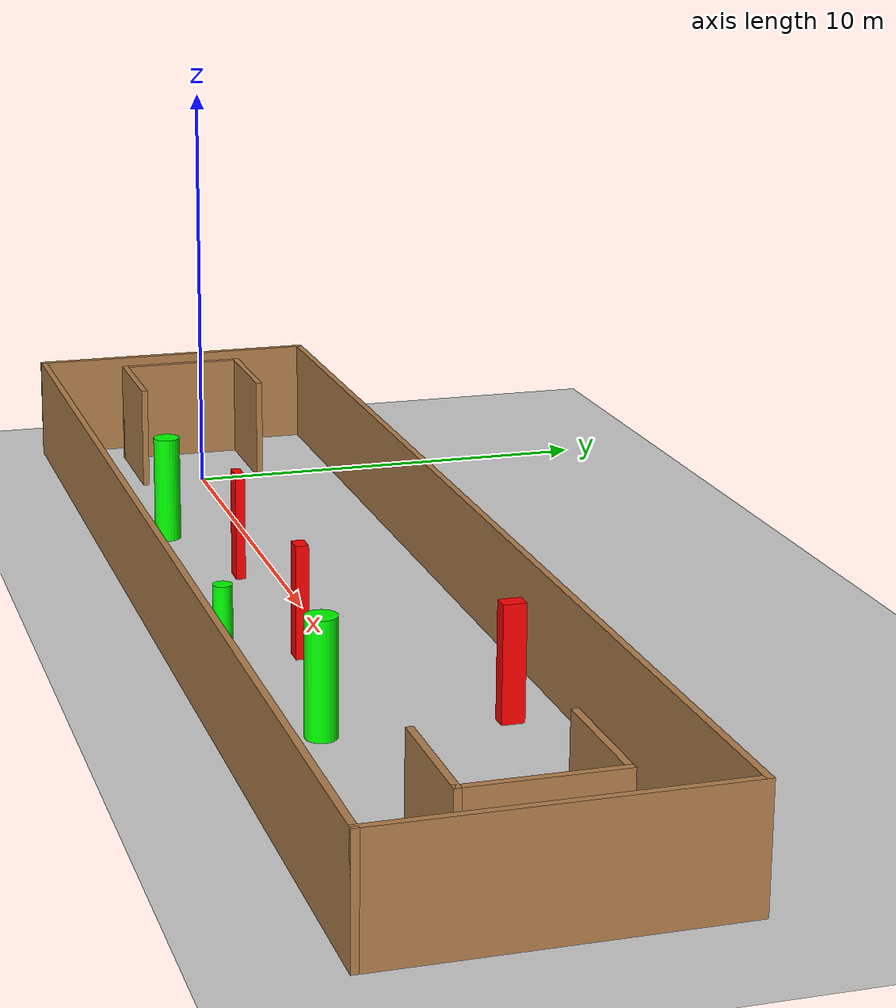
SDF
<sdf version="1.7">
 <world name="default">
  <light name="sun" type="directional">
   <pose>0 0 10 0 -0 0</pose>
   <diffuse>0.8 0.8 0.8 1</diffuse>
   <specular>0.2 0.2 0.2 1</specular>
   <attenuation>
    <range>1000</range>
    <constant>0.9</constant>
    <linear>0.01</linear>
    <quadratic>0.001</quadratic>
   </attenuation>
   <direction>-0.5 0.1 -0.9</direction>
   <spot><inner_angle>0</inner_angle><outer_angle>0</outer_angle><falloff>0</falloff></spot>
  </light>
  <model name="ground_plane">
   <static>1</static>
   <link name="link">
    <collision name="collision">
     <geometry><plane><normal>0 0 1</normal><size>100 100</size></plane></geometry>
     <surface>
      <contact><collide_bitmask>65535</collide_bitmask></contact>
      <friction><ode><mu>100</mu><mu2>50</mu2></ode></friction>
     </surface>
    </collision>
    <visual name="visual">
     <cast_shadows>0</cast_shadows>
     <geometry><plane><normal>0 0 1</normal><size>100 100</size></plane></geometry>
     <material>
      <script><uri>file://media/materials/scripts/gazebo.material</uri><name>Gazebo/Grey</name></script>
     </material>
    </visual>
   </link>
  </model>
  <gravity>0 0 -9.8</gravity>
  <magnetic_field>6e-06 2.3e-05 -4.2e-05</magnetic_field>
  <atmosphere type="adiabatic"/>
  <physics type="ode">
   <max_step_size>0.001</max_step_size>
   <real_time_factor>1</real_time_factor>
   <real_time_update_rate>1000</real_time_update_rate>
  </physics>
  <scene><ambient>0.4 0.4 0.4 1</ambient><background>0.7 0.7 0.7 1</background><shadows>1</shadows></scene>
  <spherical_coordinates>
   <surface_model>EARTH_WGS84</surface_model>
   <latitude_deg>0</latitude_deg>
   <longitude_deg>0</longitude_deg>
   <elevation>0</elevation>
   <heading_deg>0</heading_deg>
  </spherical_coordinates>
  <model name="my_base_walls">
   <link name="Wall_0">
    <collision name="Wall_0_Collision">
     <geometry><box><size>7.15 0.15 2.5</size></box></geometry>
     <pose>0 0 1.25 0 -0 0</pose>
    </collision>
    <visual name="Wall_0_Visual">
     <pose>0 0 1.25 0 -0 0</pose>
     <geometry><box><size>7.15 0.15 2.5</size></box></geometry>
     <material>
      <script><uri>file://media/materials/scripts/gazebo.material</uri><name>Gazebo/Wood</name></script>
      <ambient>1 1 1 1</ambient>
     </material>
     <meta><layer>0</layer></meta>
    </visual>
    <pose>-15 0 0 0 -0 1.5708</pose>
   </link>
   <link name="Wall_10">
    <collision name="Wall_10_Collision">
     <geometry><box><size>2.65 0.15 2.5</size></box></geometry>
     <pose>0 0 1.25 0 -0 0</pose>
    </collision>
    <visual name="Wall_10_Visual">
     <pose>0 0 1.25 0 -0 0</pose>
     <geometry><box><size>2.65 0.15 2.5</size></box></geometry>
     <material>
      <script><uri>file://media/materials/scripts/gazebo.material</uri><name>Gazebo/Wood</name></script>
      <ambient>1 1 1 1</ambient>
     </material>
     <meta><layer>0</layer></meta>
    </visual>
    <pose>-12.75 -1.5 0 0 -0 0</pose>
   </link>
   <link name="Wall_12">
    <collision name="Wall_12_Collision">
     <geometry><box><size>2.65 0.15 2.5</size></box></geometry>
     <pose>0 0 1.25 0 -0 0</pose>
    </collision>
    <visual name="Wall_12_Visual">
     <pose>0 0 1.25 0 -0 0</pose>
     <geometry><box><size>2.65 0.15 2.5</size></box></geometry>
     <material>
      <script><uri>file://media/materials/scripts/gazebo.material</uri><name>Gazebo/Wood</name></script>
      <ambient>1 1 1 1</ambient>
     </material>
     <meta><layer>0</layer></meta>
    </visual>
    <pose>-12.75 1.5 0 0 -0 0</pose>
   </link>
   <link name="Wall_14">
    <collision name="Wall_14_Collision">
     <geometry><box><size>3.15 0.15 2.5</size></box></geometry>
     <pose>0 0 1.25 0 -0 0</pose>
    </collision>
    <visual name="Wall_14_Visual">
     <pose>0 0 1.25 0 -0 0</pose>
     <geometry><box><size>3.15 0.15 2.5</size></box></geometry>
     <material>
      <script><uri>file://media/materials/scripts/gazebo.material</uri><name>Gazebo/Wood</name></script>
      <ambient>1 1 1 1</ambient>
     </material>
     <meta><layer>0</layer></meta>
    </visual>
    <pose>14 0 0 0 -0 -1.5708</pose>
   </link>
   <link name="Wall_15">
    <collision name="Wall_15_Collision">
     <geometry><box><size>2.65 0.15 2.5</size></box></geometry>
     <pose>0 0 1.25 0 -0 0</pose>
    </collision>
    <visual name="Wall_15_Visual">
     <pose>0 0 1.25 0 -0 0</pose>
     <geometry><box><size>2.65 0.15 2.5</size></box></geometry>
     <material>
      <script><uri>file://media/materials/scripts/gazebo.material</uri><name>Gazebo/Wood</name></script>
      <ambient>1 1 1 1</ambient>
     </material>
     <meta><layer>0</layer></meta>
    </visual>
    <pose>12.75 -1.5 0 0 -0 3.14159</pose>
   </link>
   <link name="Wall_17">
    <collision name="Wall_17_Collision">
     <geometry><box><size>2.65 0.15 2.5</size></box></geometry>
     <pose>0 0 1.25 0 -0 0</pose>
    </collision>
    <visual name="Wall_17_Visual">
     <pose>0 0 1.25 0 -0 0</pose>
     <geometry><box><size>2.65 0.15 2.5</size></box></geometry>
     <material>
      <script><uri>file://media/materials/scripts/gazebo.material</uri><name>Gazebo/Wood</name></script>
      <ambient>1 1 1 1</ambient>
     </material>
     <meta><layer>0</layer></meta>
    </visual>
    <pose>12.75 1.5 0 0 -0 3.14159</pose>
   </link>
   <link name="Wall_2">
    <collision name="Wall_2_Collision">
     <geometry><box><size>30.15 0.15 2.5</size></box></geometry>
     <pose>0 0 1.25 0 -0 0</pose>
    </collision>
    <visual name="Wall_2_Visual">
     <pose>0 0 1.25 0 -0 0</pose>
     <geometry><box><size>30.15 0.15 2.5</size></box></geometry>
     <material>
      <script><uri>file://media/materials/scripts/gazebo.material</uri><name>Gazebo/Wood</name></script>
      <ambient>1 1 1 1</ambient>
     </material>
     <meta><layer>0</layer></meta>
    </visual>
    <pose>-0 -3.5 0 0 -0 0</pose>
   </link>
   <link name="Wall_4">
    <collision name="Wall_4_Collision">
     <geometry><box><size>30.15 0.15 2.5</size></box></geometry>
     <pose>0 0 1.25 0 -0 0</pose>
    </collision>
    <visual name="Wall_4_Visual">
     <pose>0 0 1.25 0 -0 0</pose>
     <geometry><box><size>30.15 0.15 2.5</size></box></geometry>
     <material>
      <script><uri>file://media/materials/scripts/gazebo.material</uri><name>Gazebo/Wood</name></script>
      <ambient>1 1 1 1</ambient>
     </material>
     <meta><layer>0</layer></meta>
    </visual>
    <pose>-0 3.5 0 0 -0 0</pose>
   </link>
   <link name="Wall_6">
    <collision name="Wall_6_Collision">
     <geometry><box><size>7.15 0.15 2.5</size></box></geometry>
     <pose>0 0 1.25 0 -0 0</pose>
    </collision>
    <visual name="Wall_6_Visual">
     <pose>0 0 1.25 0 -0 0</pose>
     <geometry><box><size>7.15 0.15 2.5</size></box></geometry>
     <material>
      <script><uri>file://media/materials/scripts/gazebo.material</uri><name>Gazebo/Wood</name></script>
      <ambient>1 1 1 1</ambient>
     </material>
     <meta><layer>0</layer></meta>
    </visual>
    <pose>15 0 0 0 -0 -1.5708</pose>
   </link>
   <link name="Wall_9">
    <collision name="Wall_9_Collision">
     <geometry><box><size>3.15 0.15 2.5</size></box></geometry>
     <pose>0 0 1.25 0 -0 0</pose>
    </collision>
    <visual name="Wall_9_Visual">
     <pose>0 0 1.25 0 -0 0</pose>
     <geometry><box><size>3.15 0.15 2.5</size></box></geometry>
     <material>
      <script><uri>file://media/materials/scripts/gazebo.material</uri><name>Gazebo/Wood</name></script>
      <ambient>1 1 1 1</ambient>
     </material>
     <meta><layer>0</layer></meta>
    </visual>
    <pose>-14 0 0 0 -0 -1.5708</pose>
   </link>
   <static>1</static>
   <pose>11.5 0 0 0 -0 0</pose>
  </model>
  <model name="cylinder1">
   <static>1</static>
   <link name="link">
    <inertial>
     <mass>1</mass>
     <inertia><ixx>0.5</ixx><ixy>0</ixy><ixz>0</ixz><iyy>0.5</iyy><iyz>0</iyz><izz>1</izz></inertia>
    </inertial>
    <collision name="collision">
     <geometry><cylinder><radius>0.30807517755191094</radius><length>2.5</length></cylinder></geometry>
    </collision>
    <visual name="visual">
     <geometry><cylinder><radius>0.30807517755191094</radius><length>2.5</length></cylinder></geometry>
     <material>
      <ambient>0 1 0 1</ambient>
      <diffuse>0 1 0 1</diffuse>
      <specular>0.1 0.1 0.1 1</specular>
      <emissive>0 0 0 0</emissive>
     </material>
    </visual>
   </link>
   <pose>4.420846772510744 -1.8402235045281017 1.25 0 0 0</pose>
  </model>
  <model name="cylinder2">
   <static>1</static>
   <link name="link">
    <inertial>
     <mass>1</mass>
     <inertia><ixx>0.5</ixx><ixy>0</ixy><ixz>0</ixz><iyy>0.5</iyy><iyz>0</iyz><izz>1</izz></inertia>
    </inertial>
    <collision name="collision">
     <geometry><cylinder><radius>0.19921993828338466</radius><length>2.5</length></cylinder></geometry>
    </collision>
    <visual name="visual">
     <geometry><cylinder><radius>0.19921993828338466</radius><length>2.5</length></cylinder></geometry>
     <material>
      <ambient>0 1 0 1</ambient>
      <diffuse>0 1 0 1</diffuse>
      <specular>0.1 0.1 0.1 1</specular>
      <emissive>0 0 0 0</emissive>
     </material>
    </visual>
   </link>
   <pose>14.987962651029983 -2.917488622390503 1.25 0 0 0</pose>
  </model>
  <model name="cylinder3">
   <static>1</static>
   <link name="link">
    <inertial>
     <mass>1</mass>
     <inertia><ixx>0.5</ixx><ixy>0</ixy><ixz>0</ixz><iyy>0.5</iyy><iyz>0</iyz><izz>1</izz></inertia>
    </inertial>
    <collision name="collision">
     <geometry><cylinder><radius>0.3365469963817087</radius><length>2.5</length></cylinder></geometry>
    </collision>
    <visual name="visual">
     <geometry><cylinder><radius>0.3365469963817087</radius><length>2.5</length></cylinder></geometry>
     <material>
      <ambient>0 1 0 1</ambient>
      <diffuse>0 1 0 1</diffuse>
      <specular>0.1 0.1 0.1 1</specular>
      <emissive>0 0 0 0</emissive>
     </material>
    </visual>
   </link>
   <pose>17.241398054205092 -1.5066126328598148 1.25 0 0 0</pose>
  </model>
  <model name="box1">
   <static>1</static>
   <link name="link">
    <inertial>
     <mass>1</mass>
     <inertia><ixx>0.083</ixx><ixy>0</ixy><ixz>0</ixz><iyy>0.083</iyy><iyz>0</iyz><izz>0.083</izz></inertia>
    </inertial>
    <collision name="collision">
     <geometry><box><size>0.4977921164913047 0.2125046065230685 2.5</size></box></geometry>
    </collision>
    <visual name="visual">
     <geometry><box><size>0.4977921164913047 0.2125046065230685 2.5</size></box></geometry>
     <material>
      <ambient>1 0 0 1</ambient>
      <diffuse>1 0 0 1</diffuse>
      <specular>0.1 0.1 0.1 1</specular>
      <emissive>0 0 0 0</emissive>
     </material>
    </visual>
    <sensor name="my_contact" type="contact">
     <contact><collision>box_collision</collision><topic>__default_topic__</topic></contact>
    </sensor>
   </link>
   <pose>7.6054849313447175 -0.8571331795302175 1.25 0 0 0</pose>
  </model>
  <model name="box2">
   <static>1</static>
   <link name="link">
    <inertial>
     <mass>1</mass>
     <inertia><ixx>0.083</ixx><ixy>0</ixy><ixz>0</ixz><iyy>0.083</iyy><iyz>0</iyz><izz>0.083</izz></inertia>
    </inertial>
    <collision name="collision">
     <geometry><box><size>0.3524276747796689 0.48958754487806505 2.5</size></box></geometry>
    </collision>
    <visual name="visual">
     <geometry><box><size>0.3524276747796689 0.48958754487806505 2.5</size></box></geometry>
     <material>
      <ambient>1 0 0 1</ambient>
      <diffuse>1 0 0 1</diffuse>
      <specular>0.1 0.1 0.1 1</specular>
      <emissive>0 0 0 0</emissive>
     </material>
    </visual>
    <sensor name="my_contact" type="contact">
     <contact><collision>box_collision</collision><topic>__default_topic__</topic></contact>
    </sensor>
   </link>
   <pose>17.473199641602225 2.280881062797542 1.25 0 0 0</pose>
  </model>
  <model name="box3">
   <static>1</static>
   <link name="link">
    <inertial>
     <mass>1</mass>
     <inertia><ixx>0.083</ixx><ixy>0</ixy><ixz>0</ixz><iyy>0.083</iyy><iyz>0</iyz><izz>0.083</izz></inertia>
    </inertial>
    <collision name="collision">
     <geometry><box><size>0.407788866371553 0.2835705453803354 2.5</size></box></geometry>
    </collision>
    <visual name="visual">
     <geometry><box><size>0.407788866371553 0.2835705453803354 2.5</size></box></geometry>
     <material>
      <ambient>1 0 0 1</ambient>
      <diffuse>1 0 0 1</diffuse>
      <specular>0.1 0.1 0.1 1</specular>
      <emissive>0 0 0 0</emissive>
     </material>
    </visual>
    <sensor name="my_contact" type="contact">
     <contact><collision>box_collision</collision><topic>__default_topic__</topic></contact>
    </sensor>
   </link>
   <pose>12.93504782718173 -0.7962626457884925 1.25 0 0 0</pose>
  </model>
 </world>
</sdf>
